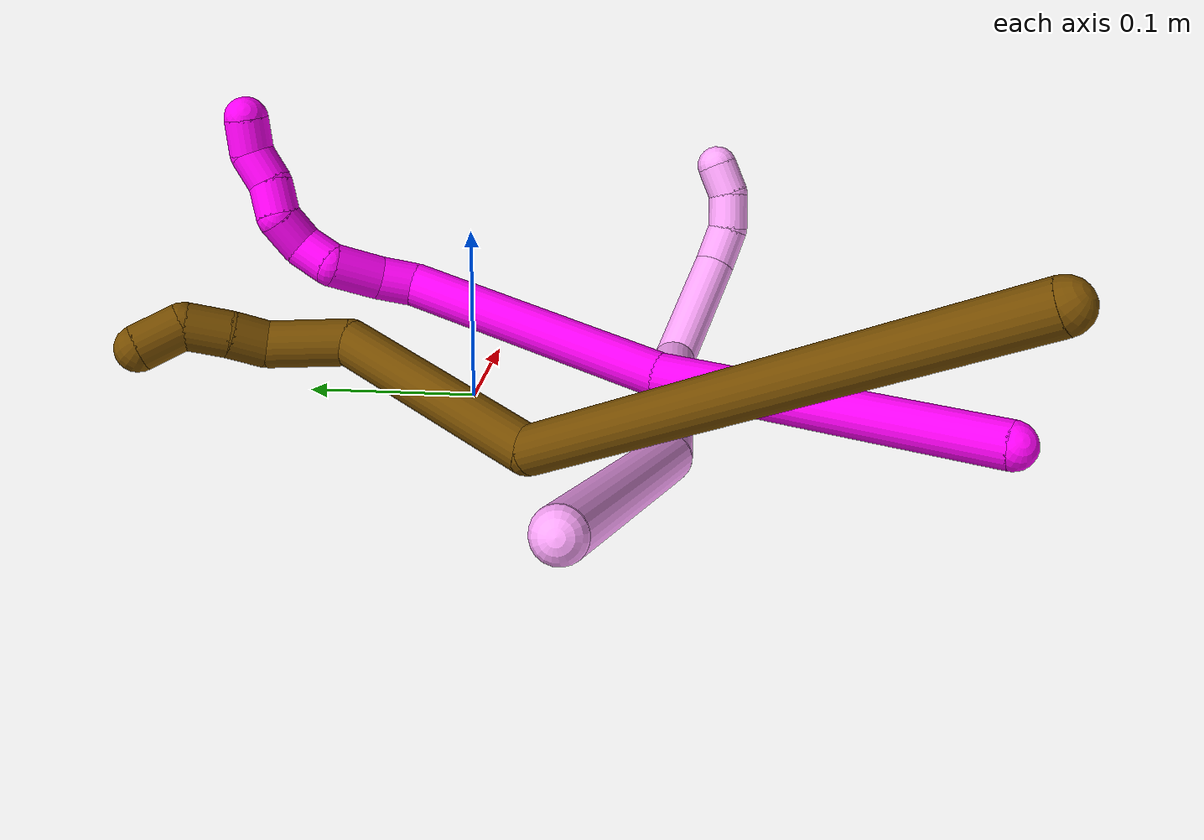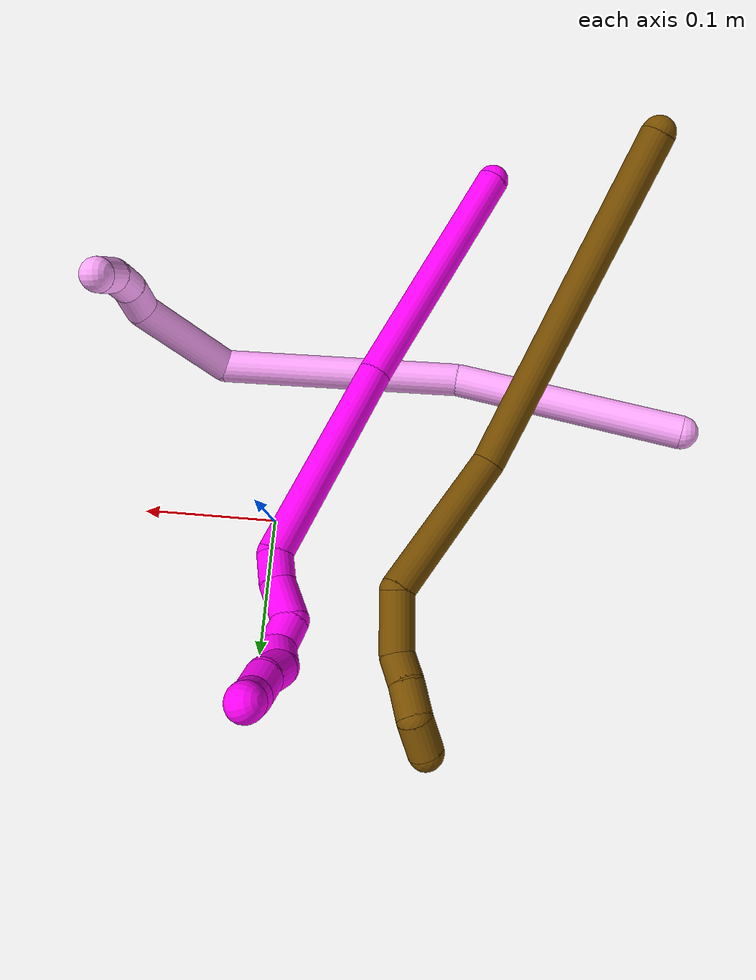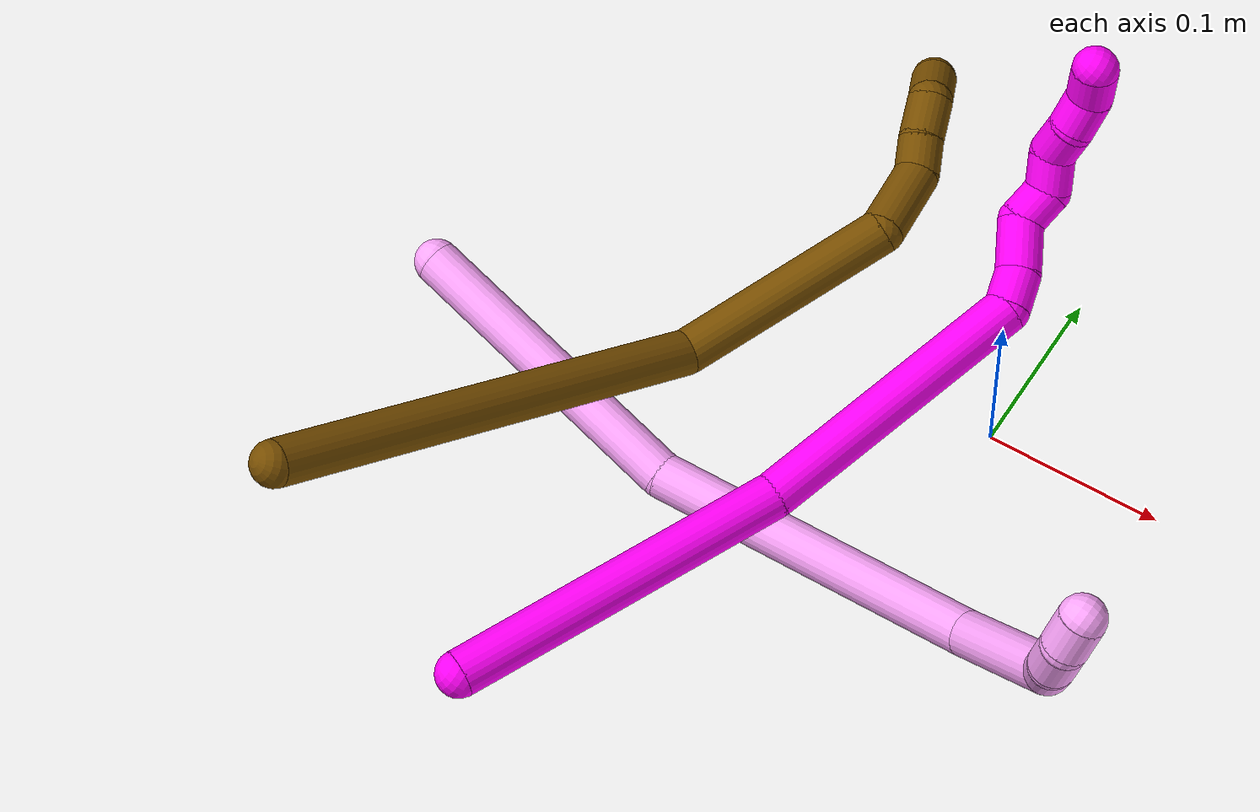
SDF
<sdf version="1.7">
 <world name="default">
  <model name="4">
   <static>0</static>
   <link name="4">
    <collision name="collision-cylinder-e_1_1_4">
     <pose>0.007964 -0.017879 -0.08394 2.93173 0.092527 0.828331</pose>
     <geometry><cylinder><radius>0.0125</radius><length>0.172384</length></cylinder></geometry>
     <surface>
      <friction><ode><mu>1.16</mu><mu2>1.16</mu2><slip1>0</slip1><slip2>0</slip2></ode></friction>
      <contact><ode><kp>1e+06</kp><kd>1</kd><max_vel>0</max_vel><min_depth>0.001</min_depth></ode></contact>
     </surface>
    </collision>
    <visual name="visual-cylinder-e_1_1_4">
     <pose>0.007964 -0.017879 -0.08394 2.93173 0.092527 0.828331</pose>
     <geometry><cylinder><radius>0.0125</radius><length>0.172384</length></cylinder></geometry>
     <material><ambient>1 0.65098 0.996078 1</ambient></material>
    </visual>
    <collision name="collision-cylinder-e_2_4_5">
     <pose>0.041196 -0.036471 -0.25567 3.13347 0.280253 3.08399</pose>
     <geometry><cylinder><radius>0.0125</radius><length>0.182712</length></cylinder></geometry>
     <surface>
      <friction><ode><mu>1.16</mu><mu2>1.16</mu2><slip1>0</slip1><slip2>0</slip2></ode></friction>
      <contact><ode><kp>1e+06</kp><kd>1</kd><max_vel>0</max_vel><min_depth>0.001</min_depth></ode></contact>
     </surface>
    </collision>
    <visual name="visual-cylinder-e_2_4_5">
     <pose>0.041196 -0.036471 -0.25567 3.13347 0.280253 3.08399</pose>
     <geometry><cylinder><radius>0.0125</radius><length>0.182712</length></cylinder></geometry>
     <material><ambient>1 0.65098 0.996078 1</ambient></material>
    </visual>
    <collision name="collision-cylinder-e_3_5_6">
     <pose>0.096061 -0.052403 -0.363378 2.48922 0.868042 1.88066</pose>
     <geometry><cylinder><radius>0.0125</radius><length>0.077569</length></cylinder></geometry>
     <surface>
      <friction><ode><mu>1.16</mu><mu2>1.16</mu2><slip1>0</slip1><slip2>0</slip2></ode></friction>
      <contact><ode><kp>1e+06</kp><kd>1</kd><max_vel>0</max_vel><min_depth>0.001</min_depth></ode></contact>
     </surface>
    </collision>
    <visual name="visual-cylinder-e_3_5_6">
     <pose>0.096061 -0.052403 -0.363378 2.48922 0.868042 1.88066</pose>
     <geometry><cylinder><radius>0.0125</radius><length>0.077569</length></cylinder></geometry>
     <material><ambient>1 0.65098 0.996078 1</ambient></material>
    </visual>
    <collision name="collision-cylinder-e_4_6_7">
     <pose>0.136728 -0.073174 -0.382409 1.41217 1.10078 0.964192</pose>
     <geometry><cylinder><radius>0.0125</radius><length>0.024837</length></cylinder></geometry>
     <surface>
      <friction><ode><mu>1.16</mu><mu2>1.16</mu2><slip1>0</slip1><slip2>0</slip2></ode></friction>
      <contact><ode><kp>1e+06</kp><kd>1</kd><max_vel>0</max_vel><min_depth>0.001</min_depth></ode></contact>
     </surface>
    </collision>
    <visual name="visual-cylinder-e_4_6_7">
     <pose>0.136728 -0.073174 -0.382409 1.41217 1.10078 0.964192</pose>
     <geometry><cylinder><radius>0.0125</radius><length>0.024837</length></cylinder></geometry>
     <material><ambient>1 0.65098 0.996078 1</ambient></material>
    </visual>
    <collision name="collision-cylinder-e_5_7_8">
     <pose>0.158764 -0.080101 -0.380561 0.960621 1.41918 0.841462</pose>
     <geometry><cylinder><radius>0.0125</radius><length>0.022184</length></cylinder></geometry>
     <surface>
      <friction><ode><mu>1.16</mu><mu2>1.16</mu2><slip1>0</slip1><slip2>0</slip2></ode></friction>
      <contact><ode><kp>1e+06</kp><kd>1</kd><max_vel>0</max_vel><min_depth>0.001</min_depth></ode></contact>
     </surface>
    </collision>
    <visual name="visual-cylinder-e_5_7_8">
     <pose>0.158764 -0.080101 -0.380561 0.960621 1.41918 0.841462</pose>
     <geometry><cylinder><radius>0.0125</radius><length>0.022184</length></cylinder></geometry>
     <material><ambient>1 0.65098 0.996078 1</ambient></material>
    </visual>
    <collision name="collision-cylinder-e_6_8_2">
     <pose>0.17948 -0.078786 -0.37867 -1.23743 1.28693 -0.980853</pose>
     <geometry><cylinder><radius>0.0125</radius><length>0.020313</length></cylinder></geometry>
     <surface>
      <friction><ode><mu>1.16</mu><mu2>1.16</mu2><slip1>0</slip1><slip2>0</slip2></ode></friction>
      <contact><ode><kp>1e+06</kp><kd>1</kd><max_vel>0</max_vel><min_depth>0.001</min_depth></ode></contact>
     </surface>
    </collision>
    <visual name="visual-cylinder-e_6_8_2">
     <pose>0.17948 -0.078786 -0.37867 -1.23743 1.28693 -0.980853</pose>
     <geometry><cylinder><radius>0.0125</radius><length>0.020313</length></cylinder></geometry>
     <material><ambient>1 0.65098 0.996078 1</ambient></material>
    </visual>
    <collision name="collision-sphere-2">
     <pose>0.18923 -0.076098 -0.377739 0 -0 0</pose>
     <geometry><sphere><radius>0.0125</radius></sphere></geometry>
     <surface>
      <friction><ode><mu>1.16</mu><mu2>1.16</mu2><slip1>0</slip1><slip2>0</slip2></ode></friction>
      <contact><ode><kp>1e+06</kp><kd>1</kd><max_vel>0</max_vel><min_depth>0.001</min_depth></ode></contact>
     </surface>
    </collision>
    <visual name="visual-sphere-2">
     <pose>0.18923 -0.076098 -0.377739 0 -0 0</pose>
     <geometry><sphere><radius>0.0125</radius></sphere></geometry>
     <material><ambient>1 0.65098 0.996078 1</ambient></material>
    </visual>
    <collision name="collision-sphere-4">
     <pose>0.015927 -0.035758 -0.167881 0 -0 0</pose>
     <geometry><sphere><radius>0.0125</radius></sphere></geometry>
     <surface>
      <friction><ode><mu>1.16</mu><mu2>1.16</mu2><slip1>0</slip1><slip2>0</slip2></ode></friction>
      <contact><ode><kp>1e+06</kp><kd>1</kd><max_vel>0</max_vel><min_depth>0.001</min_depth></ode></contact>
     </surface>
    </collision>
    <visual name="visual-sphere-4">
     <pose>0.015927 -0.035758 -0.167881 0 -0 0</pose>
     <geometry><sphere><radius>0.0125</radius></sphere></geometry>
     <material><ambient>1 0.65098 0.996078 1</ambient></material>
    </visual>
    <collision name="collision-sphere-1">
     <geometry><sphere><radius>0.0125</radius></sphere></geometry>
     <surface>
      <friction><ode><mu>1.16</mu><mu2>1.16</mu2><slip1>0</slip1><slip2>0</slip2></ode></friction>
      <contact><ode><kp>1e+06</kp><kd>1</kd><max_vel>0</max_vel><min_depth>0.001</min_depth></ode></contact>
     </surface>
    </collision>
    <visual name="visual-sphere-1">
     <geometry><sphere><radius>0.0125</radius></sphere></geometry>
     <material><ambient>1 0.65098 0.996078 1</ambient></material>
    </visual>
    <collision name="collision-sphere-8">
     <pose>0.169729 -0.081474 -0.379601 0 -0 0</pose>
     <geometry><sphere><radius>0.0125</radius></sphere></geometry>
     <surface>
      <friction><ode><mu>1.16</mu><mu2>1.16</mu2><slip1>0</slip1><slip2>0</slip2></ode></friction>
      <contact><ode><kp>1e+06</kp><kd>1</kd><max_vel>0</max_vel><min_depth>0.001</min_depth></ode></contact>
     </surface>
    </collision>
    <visual name="visual-sphere-8">
     <pose>0.169729 -0.081474 -0.379601 0 -0 0</pose>
     <geometry><sphere><radius>0.0125</radius></sphere></geometry>
     <material><ambient>1 0.65098 0.996078 1</ambient></material>
    </visual>
    <collision name="collision-sphere-5">
     <pose>0.066466 -0.037185 -0.343459 0 -0 0</pose>
     <geometry><sphere><radius>0.0125</radius></sphere></geometry>
     <surface>
      <friction><ode><mu>1.16</mu><mu2>1.16</mu2><slip1>0</slip1><slip2>0</slip2></ode></friction>
      <contact><ode><kp>1e+06</kp><kd>1</kd><max_vel>0</max_vel><min_depth>0.001</min_depth></ode></contact>
     </surface>
    </collision>
    <visual name="visual-sphere-5">
     <pose>0.066466 -0.037185 -0.343459 0 -0 0</pose>
     <geometry><sphere><radius>0.0125</radius></sphere></geometry>
     <material><ambient>1 0.65098 0.996078 1</ambient></material>
    </visual>
    <collision name="collision-sphere-6">
     <pose>0.125656 -0.06762 -0.383298 0 -0 0</pose>
     <geometry><sphere><radius>0.0125</radius></sphere></geometry>
     <surface>
      <friction><ode><mu>1.16</mu><mu2>1.16</mu2><slip1>0</slip1><slip2>0</slip2></ode></friction>
      <contact><ode><kp>1e+06</kp><kd>1</kd><max_vel>0</max_vel><min_depth>0.001</min_depth></ode></contact>
     </surface>
    </collision>
    <visual name="visual-sphere-6">
     <pose>0.125656 -0.06762 -0.383298 0 -0 0</pose>
     <geometry><sphere><radius>0.0125</radius></sphere></geometry>
     <material><ambient>1 0.65098 0.996078 1</ambient></material>
    </visual>
    <collision name="collision-sphere-7">
     <pose>0.147799 -0.078728 -0.381521 0 -0 0</pose>
     <geometry><sphere><radius>0.0125</radius></sphere></geometry>
     <surface>
      <friction><ode><mu>1.16</mu><mu2>1.16</mu2><slip1>0</slip1><slip2>0</slip2></ode></friction>
      <contact><ode><kp>1e+06</kp><kd>1</kd><max_vel>0</max_vel><min_depth>0.001</min_depth></ode></contact>
     </surface>
    </collision>
    <visual name="visual-sphere-7">
     <pose>0.147799 -0.078728 -0.381521 0 -0 0</pose>
     <geometry><sphere><radius>0.0125</radius></sphere></geometry>
     <material><ambient>1 0.65098 0.996078 1</ambient></material>
    </visual>
    <inertial>
     <pose>0.05383 -0.038011 -0.230007 0 -0 0</pose>
     <mass>0.5</mass>
     <inertia>
      <ixx>0.000178</ixx>
      <ixy>0</ixy>
      <ixz>0</ixz>
      <iyy>0.000635</iyy>
      <iyz>0</iyz>
      <izz>-0.000138</izz>
     </inertia>
    </inertial>
   </link>
   <pose>-0.297533 -0.084778 0.043501 -0.418214 -1.24711 0.422554</pose>
  </model>
  <model name="10">
   <static>0</static>
   <link name="10">
    <collision name="collision-cylinder-e_1_1_4">
     <pose>0.028356 0.075596 -0.04864 -2.14254 0.305562 -0.550051</pose>
     <geometry><cylinder><radius>0.0125</radius><length>0.188516</length></cylinder></geometry>
     <surface>
      <friction><ode><mu>1.16</mu><mu2>1.16</mu2><slip1>0</slip1><slip2>0</slip2></ode></friction>
      <contact><ode><kp>1e+06</kp><kd>1</kd><max_vel>0</max_vel><min_depth>0.001</min_depth></ode></contact>
     </surface>
    </collision>
    <visual name="visual-cylinder-e_1_1_4">
     <pose>0.028356 0.075596 -0.04864 -2.14254 0.305562 -0.550051</pose>
     <geometry><cylinder><radius>0.0125</radius><length>0.188516</length></cylinder></geometry>
     <material><ambient>1 0 0.964706 1</ambient></material>
    </visual>
    <collision name="collision-cylinder-e_2_4_5">
     <pose>0.090031 0.217259 -0.125266 -1.97147 0.434751 -0.643657</pose>
     <geometry><cylinder><radius>0.0125</radius><length>0.158219</length></cylinder></geometry>
     <surface>
      <friction><ode><mu>1.16</mu><mu2>1.16</mu2><slip1>0</slip1><slip2>0</slip2></ode></friction>
      <contact><ode><kp>1e+06</kp><kd>1</kd><max_vel>0</max_vel><min_depth>0.001</min_depth></ode></contact>
     </surface>
    </collision>
    <visual name="visual-cylinder-e_2_4_5">
     <pose>0.090031 0.217259 -0.125266 -1.97147 0.434751 -0.643657</pose>
     <geometry><cylinder><radius>0.0125</radius><length>0.158219</length></cylinder></geometry>
     <material><ambient>1 0 0.964706 1</ambient></material>
    </visual>
    <collision name="collision-cylinder-e_3_5_6">
     <pose>0.124805 0.293849 -0.151967 -1.44937 0.136374 -0.120785</pose>
     <geometry><cylinder><radius>0.0125</radius><length>0.0214</length></cylinder></geometry>
     <surface>
      <friction><ode><mu>1.16</mu><mu2>1.16</mu2><slip1>0</slip1><slip2>0</slip2></ode></friction>
      <contact><ode><kp>1e+06</kp><kd>1</kd><max_vel>0</max_vel><min_depth>0.001</min_depth></ode></contact>
     </surface>
    </collision>
    <visual name="visual-cylinder-e_3_5_6">
     <pose>0.124805 0.293849 -0.151967 -1.44937 0.136374 -0.120785</pose>
     <geometry><cylinder><radius>0.0125</radius><length>0.0214</length></cylinder></geometry>
     <material><ambient>1 0 0.964706 1</ambient></material>
    </visual>
    <collision name="collision-cylinder-e_4_6_7">
     <pose>0.128032 0.317812 -0.145159 -1.18081 0.121348 -0.081376</pose>
     <geometry><cylinder><radius>0.0125</radius><length>0.029277</length></cylinder></geometry>
     <surface>
      <friction><ode><mu>1.16</mu><mu2>1.16</mu2><slip1>0</slip1><slip2>0</slip2></ode></friction>
      <contact><ode><kp>1e+06</kp><kd>1</kd><max_vel>0</max_vel><min_depth>0.001</min_depth></ode></contact>
     </surface>
    </collision>
    <visual name="visual-cylinder-e_4_6_7">
     <pose>0.128032 0.317812 -0.145159 -1.18081 0.121348 -0.081376</pose>
     <geometry><cylinder><radius>0.0125</radius><length>0.029277</length></cylinder></geometry>
     <material><ambient>1 0 0.964706 1</ambient></material>
    </visual>
    <collision name="collision-cylinder-e_5_7_8">
     <pose>0.135979 0.33963 -0.141154 -1.75017 0.627444 -0.741198</pose>
     <geometry><cylinder><radius>0.0125</radius><length>0.021036</length></cylinder></geometry>
     <surface>
      <friction><ode><mu>1.16</mu><mu2>1.16</mu2><slip1>0</slip1><slip2>0</slip2></ode></friction>
      <contact><ode><kp>1e+06</kp><kd>1</kd><max_vel>0</max_vel><min_depth>0.001</min_depth></ode></contact>
     </surface>
    </collision>
    <visual name="visual-cylinder-e_5_7_8">
     <pose>0.135979 0.33963 -0.141154 -1.75017 0.627444 -0.741198</pose>
     <geometry><cylinder><radius>0.0125</radius><length>0.021036</length></cylinder></geometry>
     <material><ambient>1 0 0.964706 1</ambient></material>
    </visual>
    <collision name="collision-cylinder-e_6_8_9">
     <pose>0.148505 0.354637 -0.137221 -0.882593 0.637052 -0.309046</pose>
     <geometry><cylinder><radius>0.0125</radius><length>0.021355</length></cylinder></geometry>
     <surface>
      <friction><ode><mu>1.16</mu><mu2>1.16</mu2><slip1>0</slip1><slip2>0</slip2></ode></friction>
      <contact><ode><kp>1e+06</kp><kd>1</kd><max_vel>0</max_vel><min_depth>0.001</min_depth></ode></contact>
     </surface>
    </collision>
    <visual name="visual-cylinder-e_6_8_9">
     <pose>0.148505 0.354637 -0.137221 -0.882593 0.637052 -0.309046</pose>
     <geometry><cylinder><radius>0.0125</radius><length>0.021355</length></cylinder></geometry>
     <material><ambient>1 0 0.964706 1</ambient></material>
    </visual>
    <collision name="collision-cylinder-e_7_9_10">
     <pose>0.164454 0.363844 -0.130109 -0.998444 1.26161 -0.757999</pose>
     <geometry><cylinder><radius>0.0125</radius><length>0.02015</length></cylinder></geometry>
     <surface>
      <friction><ode><mu>1.16</mu><mu2>1.16</mu2><slip1>0</slip1><slip2>0</slip2></ode></friction>
      <contact><ode><kp>1e+06</kp><kd>1</kd><max_vel>0</max_vel><min_depth>0.001</min_depth></ode></contact>
     </surface>
    </collision>
    <visual name="visual-cylinder-e_7_9_10">
     <pose>0.164454 0.363844 -0.130109 -0.998444 1.26161 -0.757999</pose>
     <geometry><cylinder><radius>0.0125</radius><length>0.02015</length></cylinder></geometry>
     <material><ambient>1 0 0.964706 1</ambient></material>
    </visual>
    <collision name="collision-cylinder-e_8_10_11">
     <pose>0.182264 0.371829 -0.126631 -1.24655 0.963688 -0.719181</pose>
     <geometry><cylinder><radius>0.0125</radius><length>0.02</length></cylinder></geometry>
     <surface>
      <friction><ode><mu>1.16</mu><mu2>1.16</mu2><slip1>0</slip1><slip2>0</slip2></ode></friction>
      <contact><ode><kp>1e+06</kp><kd>1</kd><max_vel>0</max_vel><min_depth>0.001</min_depth></ode></contact>
     </surface>
    </collision>
    <visual name="visual-cylinder-e_8_10_11">
     <pose>0.182264 0.371829 -0.126631 -1.24655 0.963688 -0.719181</pose>
     <geometry><cylinder><radius>0.0125</radius><length>0.02</length></cylinder></geometry>
     <material><ambient>1 0 0.964706 1</ambient></material>
    </visual>
    <collision name="collision-cylinder-e_9_11_2">
     <pose>0.199092 0.378802 -0.119936 -0.310489 1.03437 -0.177581</pose>
     <geometry><cylinder><radius>0.0125</radius><length>0.020046</length></cylinder></geometry>
     <surface>
      <friction><ode><mu>1.16</mu><mu2>1.16</mu2><slip1>0</slip1><slip2>0</slip2></ode></friction>
      <contact><ode><kp>1e+06</kp><kd>1</kd><max_vel>0</max_vel><min_depth>0.001</min_depth></ode></contact>
     </surface>
    </collision>
    <visual name="visual-cylinder-e_9_11_2">
     <pose>0.199092 0.378802 -0.119936 -0.310489 1.03437 -0.177581</pose>
     <geometry><cylinder><radius>0.0125</radius><length>0.020046</length></cylinder></geometry>
     <material><ambient>1 0 0.964706 1</ambient></material>
    </visual>
    <collision name="collision-sphere-2">
     <pose>0.207707 0.380367 -0.115059 0 -0 0</pose>
     <geometry><sphere><radius>0.0125</radius></sphere></geometry>
     <surface>
      <friction><ode><mu>1.16</mu><mu2>1.16</mu2><slip1>0</slip1><slip2>0</slip2></ode></friction>
      <contact><ode><kp>1e+06</kp><kd>1</kd><max_vel>0</max_vel><min_depth>0.001</min_depth></ode></contact>
     </surface>
    </collision>
    <visual name="visual-sphere-2">
     <pose>0.207707 0.380367 -0.115059 0 -0 0</pose>
     <geometry><sphere><radius>0.0125</radius></sphere></geometry>
     <material><ambient>1 0 0.964706 1</ambient></material>
    </visual>
    <collision name="collision-sphere-11">
     <pose>0.190477 0.377237 -0.124814 0 -0 0</pose>
     <geometry><sphere><radius>0.0125</radius></sphere></geometry>
     <surface>
      <friction><ode><mu>1.16</mu><mu2>1.16</mu2><slip1>0</slip1><slip2>0</slip2></ode></friction>
      <contact><ode><kp>1e+06</kp><kd>1</kd><max_vel>0</max_vel><min_depth>0.001</min_depth></ode></contact>
     </surface>
    </collision>
    <visual name="visual-sphere-11">
     <pose>0.190477 0.377237 -0.124814 0 -0 0</pose>
     <geometry><sphere><radius>0.0125</radius></sphere></geometry>
     <material><ambient>1 0 0.964706 1</ambient></material>
    </visual>
    <collision name="collision-sphere-10">
     <pose>0.174051 0.366421 -0.128449 0 -0 0</pose>
     <geometry><sphere><radius>0.0125</radius></sphere></geometry>
     <surface>
      <friction><ode><mu>1.16</mu><mu2>1.16</mu2><slip1>0</slip1><slip2>0</slip2></ode></friction>
      <contact><ode><kp>1e+06</kp><kd>1</kd><max_vel>0</max_vel><min_depth>0.001</min_depth></ode></contact>
     </surface>
    </collision>
    <visual name="visual-sphere-10">
     <pose>0.174051 0.366421 -0.128449 0 -0 0</pose>
     <geometry><sphere><radius>0.0125</radius></sphere></geometry>
     <material><ambient>1 0 0.964706 1</ambient></material>
    </visual>
    <collision name="collision-sphere-9">
     <pose>0.154857 0.361267 -0.13177 0 -0 0</pose>
     <geometry><sphere><radius>0.0125</radius></sphere></geometry>
     <surface>
      <friction><ode><mu>1.16</mu><mu2>1.16</mu2><slip1>0</slip1><slip2>0</slip2></ode></friction>
      <contact><ode><kp>1e+06</kp><kd>1</kd><max_vel>0</max_vel><min_depth>0.001</min_depth></ode></contact>
     </surface>
    </collision>
    <visual name="visual-sphere-9">
     <pose>0.154857 0.361267 -0.13177 0 -0 0</pose>
     <geometry><sphere><radius>0.0125</radius></sphere></geometry>
     <material><ambient>1 0 0.964706 1</ambient></material>
    </visual>
    <collision name="collision-sphere-4">
     <pose>0.056711 0.151191 -0.09728 0 -0 0</pose>
     <geometry><sphere><radius>0.0125</radius></sphere></geometry>
     <surface>
      <friction><ode><mu>1.16</mu><mu2>1.16</mu2><slip1>0</slip1><slip2>0</slip2></ode></friction>
      <contact><ode><kp>1e+06</kp><kd>1</kd><max_vel>0</max_vel><min_depth>0.001</min_depth></ode></contact>
     </surface>
    </collision>
    <visual name="visual-sphere-4">
     <pose>0.056711 0.151191 -0.09728 0 -0 0</pose>
     <geometry><sphere><radius>0.0125</radius></sphere></geometry>
     <material><ambient>1 0 0.964706 1</ambient></material>
    </visual>
    <collision name="collision-sphere-1">
     <geometry><sphere><radius>0.0125</radius></sphere></geometry>
     <surface>
      <friction><ode><mu>1.16</mu><mu2>1.16</mu2><slip1>0</slip1><slip2>0</slip2></ode></friction>
      <contact><ode><kp>1e+06</kp><kd>1</kd><max_vel>0</max_vel><min_depth>0.001</min_depth></ode></contact>
     </surface>
    </collision>
    <visual name="visual-sphere-1">
     <geometry><sphere><radius>0.0125</radius></sphere></geometry>
     <material><ambient>1 0 0.964706 1</ambient></material>
    </visual>
    <collision name="collision-sphere-8">
     <pose>0.142154 0.348008 -0.142673 0 -0 0</pose>
     <geometry><sphere><radius>0.0125</radius></sphere></geometry>
     <surface>
      <friction><ode><mu>1.16</mu><mu2>1.16</mu2><slip1>0</slip1><slip2>0</slip2></ode></friction>
      <contact><ode><kp>1e+06</kp><kd>1</kd><max_vel>0</max_vel><min_depth>0.001</min_depth></ode></contact>
     </surface>
    </collision>
    <visual name="visual-sphere-8">
     <pose>0.142154 0.348008 -0.142673 0 -0 0</pose>
     <geometry><sphere><radius>0.0125</radius></sphere></geometry>
     <material><ambient>1 0 0.964706 1</ambient></material>
    </visual>
    <collision name="collision-sphere-5">
     <pose>0.123351 0.283327 -0.153251 0 -0 0</pose>
     <geometry><sphere><radius>0.0125</radius></sphere></geometry>
     <surface>
      <friction><ode><mu>1.16</mu><mu2>1.16</mu2><slip1>0</slip1><slip2>0</slip2></ode></friction>
      <contact><ode><kp>1e+06</kp><kd>1</kd><max_vel>0</max_vel><min_depth>0.001</min_depth></ode></contact>
     </surface>
    </collision>
    <visual name="visual-sphere-5">
     <pose>0.123351 0.283327 -0.153251 0 -0 0</pose>
     <geometry><sphere><radius>0.0125</radius></sphere></geometry>
     <material><ambient>1 0 0.964706 1</ambient></material>
    </visual>
    <collision name="collision-sphere-6">
     <pose>0.12626 0.304372 -0.150683 0 -0 0</pose>
     <geometry><sphere><radius>0.0125</radius></sphere></geometry>
     <surface>
      <friction><ode><mu>1.16</mu><mu2>1.16</mu2><slip1>0</slip1><slip2>0</slip2></ode></friction>
      <contact><ode><kp>1e+06</kp><kd>1</kd><max_vel>0</max_vel><min_depth>0.001</min_depth></ode></contact>
     </surface>
    </collision>
    <visual name="visual-sphere-6">
     <pose>0.12626 0.304372 -0.150683 0 -0 0</pose>
     <geometry><sphere><radius>0.0125</radius></sphere></geometry>
     <material><ambient>1 0 0.964706 1</ambient></material>
    </visual>
    <collision name="collision-sphere-7">
     <pose>0.129804 0.331252 -0.139635 0 -0 0</pose>
     <geometry><sphere><radius>0.0125</radius></sphere></geometry>
     <surface>
      <friction><ode><mu>1.16</mu><mu2>1.16</mu2><slip1>0</slip1><slip2>0</slip2></ode></friction>
      <contact><ode><kp>1e+06</kp><kd>1</kd><max_vel>0</max_vel><min_depth>0.001</min_depth></ode></contact>
     </surface>
    </collision>
    <visual name="visual-sphere-7">
     <pose>0.129804 0.331252 -0.139635 0 -0 0</pose>
     <geometry><sphere><radius>0.0125</radius></sphere></geometry>
     <material><ambient>1 0 0.964706 1</ambient></material>
    </visual>
    <inertial>
     <pose>0.085982 0.202596 -0.099898 0 -0 0</pose>
     <mass>0.5</mass>
     <inertia>
      <ixx>0.000261</ixx>
      <ixy>0</ixy>
      <ixz>0</ixz>
      <iyy>-0.000644</iyy>
      <iyz>0</iyz>
      <izz>-0.00107</izz>
     </inertia>
    </inertial>
   </link>
   <pose>-0.14774 -0.284045 0.033501 0.083847 -1.01885 0.130417</pose>
  </model>
  <model name="12">
   <static>0</static>
   <link name="12">
    <collision name="collision-cylinder-e_1_1_4">
     <pose>0.011697 0.044717 -0.123136 -2.79325 0.089048 -0.495993</pose>
     <geometry><cylinder><radius>0.0125</radius><length>0.263051</length></cylinder></geometry>
     <surface>
      <friction><ode><mu>1.16</mu><mu2>1.16</mu2><slip1>0</slip1><slip2>0</slip2></ode></friction>
      <contact><ode><kp>1e+06</kp><kd>1</kd><max_vel>0</max_vel><min_depth>0.001</min_depth></ode></contact>
     </surface>
    </collision>
    <visual name="visual-cylinder-e_1_1_4">
     <pose>0.011697 0.044717 -0.123136 -2.79325 0.089048 -0.495993</pose>
     <geometry><cylinder><radius>0.0125</radius><length>0.263051</length></cylinder></geometry>
     <material><ambient>0.466667 0.301961 0 1</ambient></material>
    </visual>
    <collision name="collision-cylinder-e_2_4_5">
     <pose>0.060858 0.124664 -0.280505 -2.34184 0.65157 -1.34863</pose>
     <geometry><cylinder><radius>0.0125</radius><length>0.123558</length></cylinder></geometry>
     <surface>
      <friction><ode><mu>1.16</mu><mu2>1.16</mu2><slip1>0</slip1><slip2>0</slip2></ode></friction>
      <contact><ode><kp>1e+06</kp><kd>1</kd><max_vel>0</max_vel><min_depth>0.001</min_depth></ode></contact>
     </surface>
    </collision>
    <visual name="visual-cylinder-e_2_4_5">
     <pose>0.060858 0.124664 -0.280505 -2.34184 0.65157 -1.34863</pose>
     <geometry><cylinder><radius>0.0125</radius><length>0.123558</length></cylinder></geometry>
     <material><ambient>0.466667 0.301961 0 1</ambient></material>
    </visual>
    <collision name="collision-cylinder-e_3_5_6">
     <pose>0.097868 0.177668 -0.327598 -2.19714 -0.020712 0.040546</pose>
     <geometry><cylinder><radius>0.0125</radius><length>0.043887</length></cylinder></geometry>
     <surface>
      <friction><ode><mu>1.16</mu><mu2>1.16</mu2><slip1>0</slip1><slip2>0</slip2></ode></friction>
      <contact><ode><kp>1e+06</kp><kd>1</kd><max_vel>0</max_vel><min_depth>0.001</min_depth></ode></contact>
     </surface>
    </collision>
    <visual name="visual-cylinder-e_3_5_6">
     <pose>0.097868 0.177668 -0.327598 -2.19714 -0.020712 0.040546</pose>
     <geometry><cylinder><radius>0.0125</radius><length>0.043887</length></cylinder></geometry>
     <material><ambient>0.466667 0.301961 0 1</ambient></material>
    </visual>
    <collision name="collision-cylinder-e_4_6_7">
     <pose>0.097276 0.205556 -0.341696 -1.69253 -0.013507 0.01526</pose>
     <geometry><cylinder><radius>0.0125</radius><length>0.02038</length></cylinder></geometry>
     <surface>
      <friction><ode><mu>1.16</mu><mu2>1.16</mu2><slip1>0</slip1><slip2>0</slip2></ode></friction>
      <contact><ode><kp>1e+06</kp><kd>1</kd><max_vel>0</max_vel><min_depth>0.001</min_depth></ode></contact>
     </surface>
    </collision>
    <visual name="visual-cylinder-e_4_6_7">
     <pose>0.097276 0.205556 -0.341696 -1.69253 -0.013507 0.01526</pose>
     <geometry><cylinder><radius>0.0125</radius><length>0.02038</length></cylinder></geometry>
     <material><ambient>0.466667 0.301961 0 1</ambient></material>
    </visual>
    <collision name="collision-cylinder-e_5_7_8">
     <pose>0.096952 0.227172 -0.345987 -1.83026 -0.015725 0.020443</pose>
     <geometry><cylinder><radius>0.0125</radius><length>0.023804</length></cylinder></geometry>
     <surface>
      <friction><ode><mu>1.16</mu><mu2>1.16</mu2><slip1>0</slip1><slip2>0</slip2></ode></friction>
      <contact><ode><kp>1e+06</kp><kd>1</kd><max_vel>0</max_vel><min_depth>0.001</min_depth></ode></contact>
     </surface>
    </collision>
    <visual name="visual-cylinder-e_5_7_8">
     <pose>0.096952 0.227172 -0.345987 -1.83026 -0.015725 0.020443</pose>
     <geometry><cylinder><radius>0.0125</radius><length>0.023804</length></cylinder></geometry>
     <material><ambient>0.466667 0.301961 0 1</ambient></material>
    </visual>
    <collision name="collision-cylinder-e_6_8_2">
     <pose>0.090713 0.246885 -0.356539 -2.31096 -0.498369 1.04679</pose>
     <geometry><cylinder><radius>0.0125</radius><length>0.02532</length></cylinder></geometry>
     <surface>
      <friction><ode><mu>1.16</mu><mu2>1.16</mu2><slip1>0</slip1><slip2>0</slip2></ode></friction>
      <contact><ode><kp>1e+06</kp><kd>1</kd><max_vel>0</max_vel><min_depth>0.001</min_depth></ode></contact>
     </surface>
    </collision>
    <visual name="visual-cylinder-e_6_8_2">
     <pose>0.090713 0.246885 -0.356539 -2.31096 -0.498369 1.04679</pose>
     <geometry><cylinder><radius>0.0125</radius><length>0.02532</length></cylinder></geometry>
     <material><ambient>0.466667 0.301961 0 1</ambient></material>
    </visual>
    <collision name="collision-sphere-2">
     <pose>0.084662 0.255095 -0.364039 0 -0 0</pose>
     <geometry><sphere><radius>0.0125</radius></sphere></geometry>
     <surface>
      <friction><ode><mu>1.16</mu><mu2>1.16</mu2><slip1>0</slip1><slip2>0</slip2></ode></friction>
      <contact><ode><kp>1e+06</kp><kd>1</kd><max_vel>0</max_vel><min_depth>0.001</min_depth></ode></contact>
     </surface>
    </collision>
    <visual name="visual-sphere-2">
     <pose>0.084662 0.255095 -0.364039 0 -0 0</pose>
     <geometry><sphere><radius>0.0125</radius></sphere></geometry>
     <material><ambient>0.466667 0.301961 0 1</ambient></material>
    </visual>
    <collision name="collision-sphere-4">
     <pose>0.023393 0.089434 -0.246273 0 -0 0</pose>
     <geometry><sphere><radius>0.0125</radius></sphere></geometry>
     <surface>
      <friction><ode><mu>1.16</mu><mu2>1.16</mu2><slip1>0</slip1><slip2>0</slip2></ode></friction>
      <contact><ode><kp>1e+06</kp><kd>1</kd><max_vel>0</max_vel><min_depth>0.001</min_depth></ode></contact>
     </surface>
    </collision>
    <visual name="visual-sphere-4">
     <pose>0.023393 0.089434 -0.246273 0 -0 0</pose>
     <geometry><sphere><radius>0.0125</radius></sphere></geometry>
     <material><ambient>0.466667 0.301961 0 1</ambient></material>
    </visual>
    <collision name="collision-sphere-1">
     <geometry><sphere><radius>0.0125</radius></sphere></geometry>
     <surface>
      <friction><ode><mu>1.16</mu><mu2>1.16</mu2><slip1>0</slip1><slip2>0</slip2></ode></friction>
      <contact><ode><kp>1e+06</kp><kd>1</kd><max_vel>0</max_vel><min_depth>0.001</min_depth></ode></contact>
     </surface>
    </collision>
    <visual name="visual-sphere-1">
     <geometry><sphere><radius>0.0125</radius></sphere></geometry>
     <material><ambient>0.466667 0.301961 0 1</ambient></material>
    </visual>
    <collision name="collision-sphere-8">
     <pose>0.096764 0.238674 -0.34904 0 -0 0</pose>
     <geometry><sphere><radius>0.0125</radius></sphere></geometry>
     <surface>
      <friction><ode><mu>1.16</mu><mu2>1.16</mu2><slip1>0</slip1><slip2>0</slip2></ode></friction>
      <contact><ode><kp>1e+06</kp><kd>1</kd><max_vel>0</max_vel><min_depth>0.001</min_depth></ode></contact>
     </surface>
    </collision>
    <visual name="visual-sphere-8">
     <pose>0.096764 0.238674 -0.34904 0 -0 0</pose>
     <geometry><sphere><radius>0.0125</radius></sphere></geometry>
     <material><ambient>0.466667 0.301961 0 1</ambient></material>
    </visual>
    <collision name="collision-sphere-5">
     <pose>0.098323 0.159894 -0.314738 0 -0 0</pose>
     <geometry><sphere><radius>0.0125</radius></sphere></geometry>
     <surface>
      <friction><ode><mu>1.16</mu><mu2>1.16</mu2><slip1>0</slip1><slip2>0</slip2></ode></friction>
      <contact><ode><kp>1e+06</kp><kd>1</kd><max_vel>0</max_vel><min_depth>0.001</min_depth></ode></contact>
     </surface>
    </collision>
    <visual name="visual-sphere-5">
     <pose>0.098323 0.159894 -0.314738 0 -0 0</pose>
     <geometry><sphere><radius>0.0125</radius></sphere></geometry>
     <material><ambient>0.466667 0.301961 0 1</ambient></material>
    </visual>
    <collision name="collision-sphere-6">
     <pose>0.097414 0.195443 -0.340459 0 -0 0</pose>
     <geometry><sphere><radius>0.0125</radius></sphere></geometry>
     <surface>
      <friction><ode><mu>1.16</mu><mu2>1.16</mu2><slip1>0</slip1><slip2>0</slip2></ode></friction>
      <contact><ode><kp>1e+06</kp><kd>1</kd><max_vel>0</max_vel><min_depth>0.001</min_depth></ode></contact>
     </surface>
    </collision>
    <visual name="visual-sphere-6">
     <pose>0.097414 0.195443 -0.340459 0 -0 0</pose>
     <geometry><sphere><radius>0.0125</radius></sphere></geometry>
     <material><ambient>0.466667 0.301961 0 1</ambient></material>
    </visual>
    <collision name="collision-sphere-7">
     <pose>0.097139 0.21567 -0.342933 0 -0 0</pose>
     <geometry><sphere><radius>0.0125</radius></sphere></geometry>
     <surface>
      <friction><ode><mu>1.16</mu><mu2>1.16</mu2><slip1>0</slip1><slip2>0</slip2></ode></friction>
      <contact><ode><kp>1e+06</kp><kd>1</kd><max_vel>0</max_vel><min_depth>0.001</min_depth></ode></contact>
     </surface>
    </collision>
    <visual name="visual-sphere-7">
     <pose>0.097139 0.21567 -0.342933 0 -0 0</pose>
     <geometry><sphere><radius>0.0125</radius></sphere></geometry>
     <material><ambient>0.466667 0.301961 0 1</ambient></material>
    </visual>
    <inertial>
     <pose>0.042957 0.101623 -0.211309 0 -0 0</pose>
     <mass>0.5</mass>
     <inertia>
      <ixx>0.000539</ixx>
      <ixy>0</ixy>
      <ixz>0</ixz>
      <iyy>-0.00203</iyy>
      <iyz>0</iyz>
      <izz>-0.000885</izz>
     </inertia>
    </inertial>
   </link>
   <pose>-0.254811 -0.275614 0.129139 0.598675 -0.685408 0.086312</pose>
  </model>
 </world>
</sdf>
